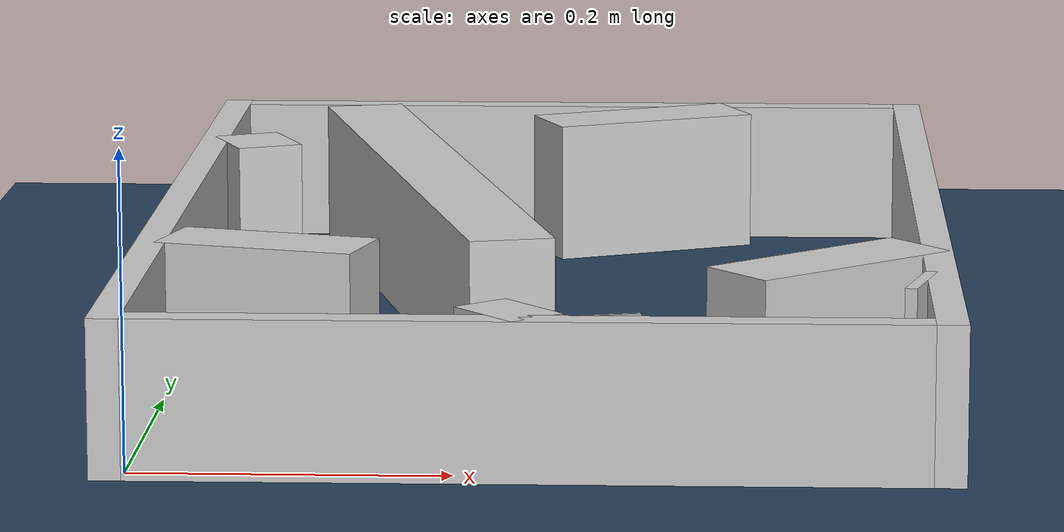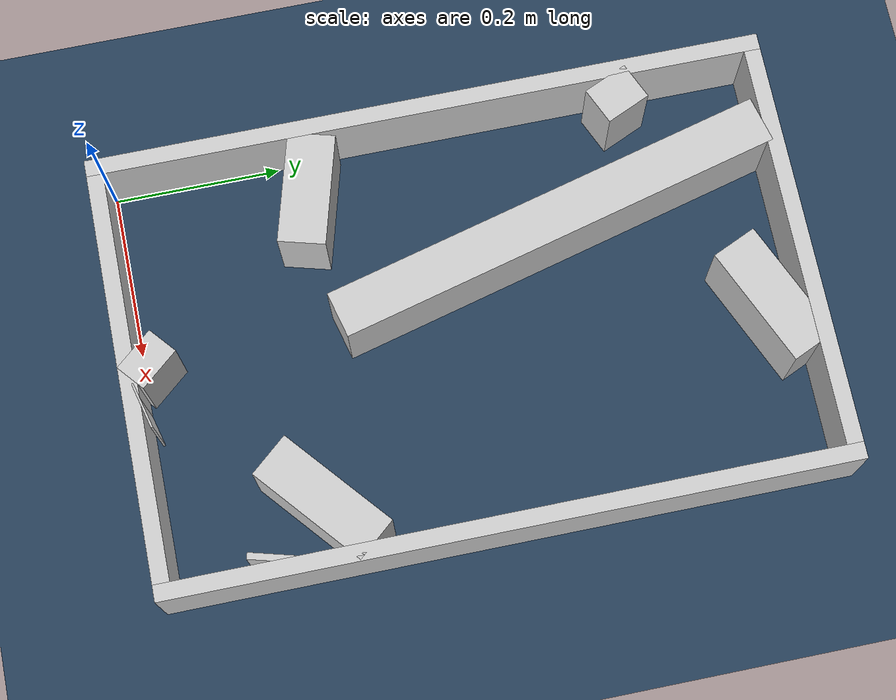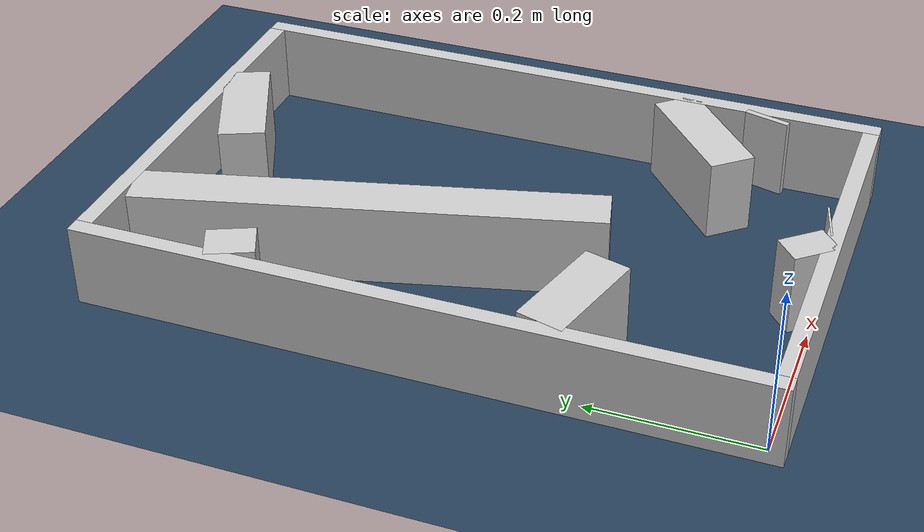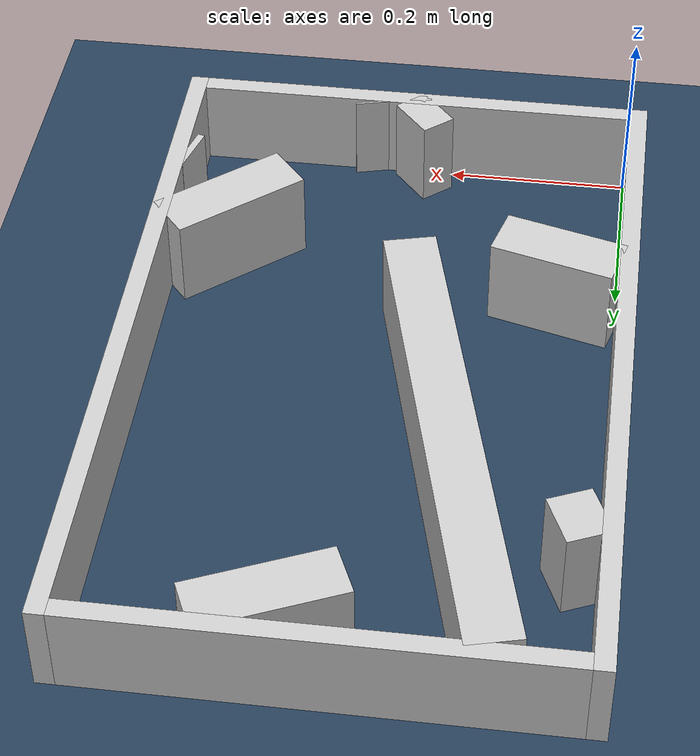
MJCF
<?xml version="1.0" ?>
<mujoco model="generated_real_template">
  <compiler angle="degree"/>
  <option timestep="0.002" integrator="implicitfast" iterations="100" cone="elliptic"/>
  <default>
    <geom density="1"/>
  </default>
  <asset>
    <texture builtin="gradient" height="3072" rgb1="0.3 0.5 0.7" rgb2="0 0 0" type="skybox" width="512"/>
    <texture builtin="checker" height="300" mark="edge" markrgb="0.8 0.8 0.8" name="groundplane" rgb1="0.2 0.3 0.4" rgb2="0.1 0.2 0.3" type="2d" width="300"/>
    <material name="groundplane" reflectance="0.2" texrepeat="5 5" texture="groundplane" texuniform="true"/>
  </asset>
  <worldbody>
    <light dir="0 0 -1" directional="true" pos="0 0 1.5"/>
    <geom name="floor" type="plane" condim="4" friction="0.5 0.005 0.001" material="groundplane" size="0 0 0.05"/>
    <body name="walls">
      <geom name="wall_boundary_left" type="box" condim="4" friction="1.0 0.005 0.0001" rgba="0.8 0.8 0.8 1" pos="-0.010000 0.387500 0.050000" euler="0 0 0.000000" size="0.010000 0.407500 0.050000"/>
      <geom name="wall_boundary_right" type="box" condim="4" friction="1.0 0.005 0.0001" rgba="0.8 0.8 0.8 1" pos="0.500000 0.387500 0.050000" euler="0 0 0.000000" size="0.010000 0.407500 0.050000"/>
      <geom name="wall_boundary_bottom" type="box" condim="4" friction="1.0 0.005 0.0001" rgba="0.8 0.8 0.8 1" pos="0.245000 -0.010000 0.050000" euler="0 0 0.000000" size="0.245000 0.010000 0.050000"/>
      <geom name="wall_boundary_top" type="box" condim="4" friction="1.0 0.005 0.0001" rgba="0.8 0.8 0.8 1" pos="0.245000 0.785000 0.050000" euler="0 0 0.000000" size="0.245000 0.010000 0.050000"/>
      <geom name="wall_inner_1_1" type="box" condim="4" friction="1.0 0.005 0.0001" rgba="0.8 0.8 0.8 1" pos="0.156324 0.506628 0.050000" euler="0 0 -75.659925" size="0.277002 0.028500 0.050000"/>
      <geom name="wall_inner_1_2" type="box" condim="4" friction="1.0 0.005 0.0001" rgba="0.8 0.8 0.8 1" pos="0.285535 0.001189 0.050000" euler="0 0 -75.659925" size="0.001227 0.028500 0.050000"/>
      <geom name="wall_inner_2_1" type="box" condim="4" friction="1.0 0.005 0.0001" rgba="0.8 0.8 0.8 1" pos="0.430219 0.183023 0.050000" euler="0 0 -139.527993" size="0.078584 0.028500 0.050000"/>
      <geom name="wall_inner_2_2" type="box" condim="4" friction="1.0 0.005 0.0001" rgba="0.8 0.8 0.8 1" pos="0.232827 0.014601 0.050000" euler="0 0 -139.527993" size="0.019904 0.028500 0.050000"/>
      <geom name="wall_inner_3_1" type="box" condim="4" friction="1.0 0.005 0.0001" rgba="0.8 0.8 0.8 1" pos="0.486186 0.116150 0.050000" euler="0 0 164.731487" size="0.003954 0.028500 0.050000"/>
      <geom name="wall_inner_3_2" type="box" condim="4" friction="1.0 0.005 0.0001" rgba="0.8 0.8 0.8 1" pos="0.065208 0.231068 0.050000" euler="0 0 164.731487" size="0.067594 0.028500 0.050000"/>
      <geom name="wall_inner_4_1" type="box" condim="4" friction="1.0 0.005 0.0001" rgba="0.8 0.8 0.8 1" pos="0.021813 0.614200 0.050000" euler="0 0 23.946076" size="0.023867 0.028500 0.050000"/>
      <geom name="wall_inner_4_2" type="box" condim="4" friction="1.0 0.005 0.0001" rgba="0.8 0.8 0.8 1" pos="0.300229 0.737846 0.050000" euler="0 0 23.946076" size="0.076640 0.028500 0.050000"/>
    </body>
  </worldbody>
</mujoco>
